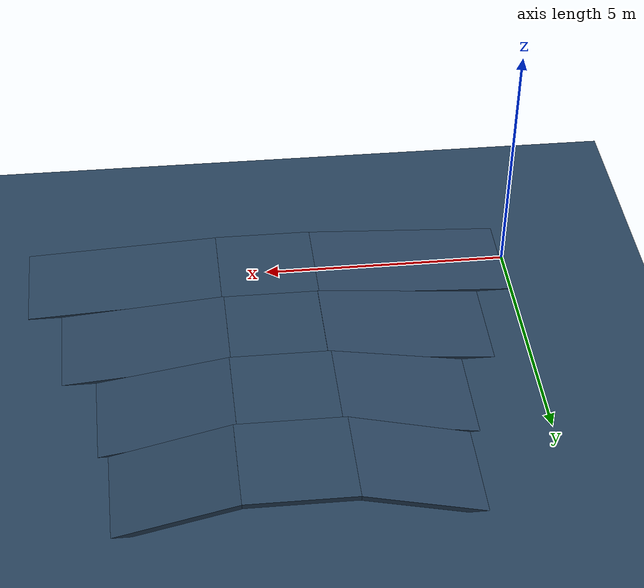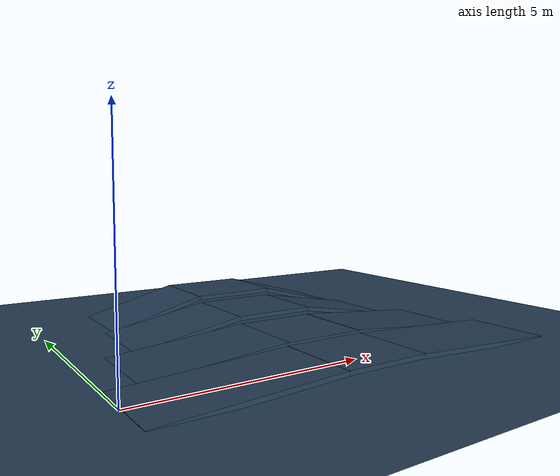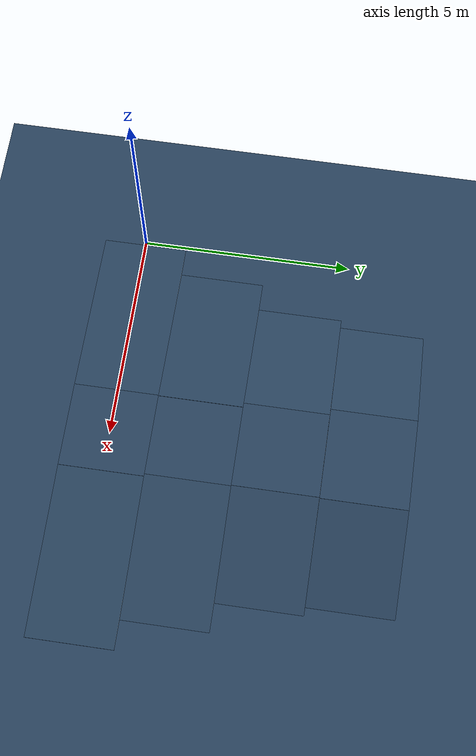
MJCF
<?xml version="1.0"?>

<mujoco>
  <visual>
    <headlight diffuse="0.6 0.6 0.6" ambient="0.3 0.3 0.3" specular="0 0 0"/>
    <rgba haze="0.15 0.25 0.35 1"/>
  </visual>

  <statistic center="0 0 .3" extent="1.2"/>

  <asset>
    <texture type="skybox" builtin="gradient" rgb1="0.3 0.5 0.7" rgb2="0 0 0" width="512" height="3072"/>
    <texture type="2d" name="groundplane" builtin="checker" mark="edge" rgb1="0.2 0.3 0.4" rgb2="0.1 0.2 0.3"
      markrgb="0.8 0.8 0.8" width="300" height="300"/>
    <material name="groundplane" texture="groundplane" texuniform="true" texrepeat="5 5" reflectance="0.2"/>
  </asset>

  <worldbody>
    <light pos="0 0 1.5" dir="0 0 -1" directional="true"/>
    <camera name="custom_camera" pos="4.377 2.686 1.066" xyaxes="-0.523 0.852 0.000 -0.126 -0.077 0.989" mode="fixed" resolution="1920 1080"/>
    <geom name="floor" size="0 0 0.05" type="plane" material="groundplane" friction="1.0 0.005 0.0001"
      solref="0.02 1"
      solimp="0.9 0.95 0.001 0.5 2"
      margin="0.0"
      group="2"
      contype="1"
      conaffinity="1"
      />

      <body name="double_ramp_3deg" pos="5 0 0">

        <!-- LEFT ramp — slopes UP (rises toward +X) -->
        <body name="ramp_up0" pos="-2.95 0 0">
          <!-- size = half-extents: half_x, half_y, half_z -->
          <!-- total length = 4.0 (x), width = 2.0 (y), thickness = 0.1 (z) -->
          <!-- quat rotates +10° about Y (rises along +X) -->
          <geom name="ramp_box_up0" type="box" size="2.0 1.0 0.05"
                pos="0 0 0.053"
                quat="-0.9996573 0 0.0261769 0"
                material="groundplane" friction="1.0 0.005 0.0001"
                solref="0.02 1" solimp="0.9 0.95 0.001 0.5 2"
                group="2" contype="1" conaffinity="1"/>
        </body>

        <!-- FLAT platform between ramps -->
        <body name="platform0" pos="0 0 0">
          <!-- platform center Z chosen so platform top ≈ 0.40 m (center_z + half_z = top) -->
          <!-- here center_z = 0.35, half_z = 0.05 -> top ≈ 0.40 -->
          <geom name="platform_box0" type="box" size="1.0 1.0 0.05"
                pos="0 0 0.16"
                material="groundplane" friction="1.0 0.005 0.0001"
                solref="0.02 1" solimp="0.9 0.95 0.001 0.5 2"
                group="2" contype="1" conaffinity="1"/>
        </body>

        <!-- RIGHT ramp — slopes DOWN (descends back to level) -->
        <body name="ramp_down0" pos="2.95 0 0">
          <!-- quat rotates -10° about Y (descends toward +X) -->
          <geom name="ramp_box_down0" type="box" size="2.0 1.0 0.05"
                pos="0 0 0.053"
                quat="-0.9996573 0 -0.0261769 0"
                material="groundplane" friction="1.0 0.005 0.0001"
                solref="0.02 1" solimp="0.9 0.95 0.001 0.5 2"
                group="2" contype="1" conaffinity="1"/>
        </body>

      </body>

      <body name="double_ramp_5deg" pos="5 2.0 0">

        <!-- LEFT ramp — slopes UP (rises toward +X) -->
        <body name="ramp_up1" pos="-2.95 0 0">
          <!-- size = half-extents: half_x, half_y, half_z -->
          <!-- total length = 4.0 (x), width = 2.0 (y), thickness = 0.1 (z) -->
          <!-- quat rotates +10° about Y (rises along +X) -->
          <geom name="ramp_box_up1" type="box" size="2.0 1.0 0.05"
                pos="0 0 0.053"
                quat="-0.9990482 0 0.0436194 0"
                material="groundplane" friction="1.0 0.005 0.0001"
                solref="0.02 1" solimp="0.9 0.95 0.001 0.5 2"
                group="2" contype="1" conaffinity="1"/>
        </body>

        <!-- FLAT platform between ramps -->
        <body name="platform1" pos="0 0 0">
          <!-- platform center Z chosen so platform top ≈ 0.40 m (center_z + half_z = top) -->
          <!-- here center_z = 0.35, half_z = 0.05 -> top ≈ 0.40 -->
          <geom name="platform_box1" type="box" size="1.0 1.0 0.05"
                pos="0 0 0.22"
                material="groundplane" friction="1.0 0.005 0.0001"
                solref="0.02 1" solimp="0.9 0.95 0.001 0.5 2"
                group="2" contype="1" conaffinity="1"/>
        </body>

        <!-- RIGHT ramp — slopes DOWN (descends back to level) -->
        <body name="ramp_down1" pos="2.95 0 0">
          <!-- quat rotates -10° about Y (descends toward +X) -->
          <geom name="ramp_box_down1" type="box" size="2.0 1.0 0.05"
                pos="0 0 0.053"
                quat="-0.9990482 0 -0.0436194 0"
                material="groundplane" friction="1.0 0.005 0.0001"
                solref="0.02 1" solimp="0.9 0.95 0.001 0.5 2"
                group="2" contype="1" conaffinity="1"/>
        </body>

      </body>

      <body name="double_ramp_10deg" pos="5 4.0 0">

        <!-- LEFT ramp — slopes UP (rises toward +X) -->
        <body name="ramp_up2" pos="-2.95 0 0">
          <!-- size = half-extents: half_x, half_y, half_z -->
          <!-- total length = 4.0 (x), width = 2.0 (y), thickness = 0.1 (z) -->
          <!-- quat rotates +10° about Y (rises along +X) -->
          <geom name="ramp_box_up2" type="box" size="2.0 1.0 0.05"
                pos="0 0 0.053"
                quat="-0.9961947 0 0.0871557 0"
                material="groundplane" friction="1.0 0.005 0.0001"
                solref="0.02 1" solimp="0.9 0.95 0.001 0.5 2"
                group="2" contype="1" conaffinity="1"/>
        </body>

        <!-- FLAT platform between ramps -->
        <body name="platform2" pos="0 0 0">
          <!-- platform center Z chosen so platform top ≈ 0.40 m (center_z + half_z = top) -->
          <!-- here center_z = 0.35, half_z = 0.05 -> top ≈ 0.40 -->
          <geom name="platform_box2" type="box" size="1.0 1.0 0.05"
                pos="0 0 0.4"
                material="groundplane" friction="1.0 0.005 0.0001"
                solref="0.02 1" solimp="0.9 0.95 0.001 0.5 2"
                group="2" contype="1" conaffinity="1"/>
        </body>

        <!-- RIGHT ramp — slopes DOWN (descends back to level) -->
        <body name="ramp_down2" pos="2.95 0 0">
          <!-- quat rotates -10° about Y (descends toward +X) -->
          <geom name="ramp_box_down2" type="box" size="2.0 1.0 0.05"
                pos="0 0 0.053"
                quat="-0.9961947 0 -0.0871557 0"
                material="groundplane" friction="1.0 0.005 0.0001"
                solref="0.02 1" solimp="0.9 0.95 0.001 0.5 2"
                group="2" contype="1" conaffinity="1"/>
        </body>

      </body>

      <body name="double_ramp_15deg" pos="5 6.0 0">

        <!-- LEFT ramp — slopes UP (rises toward +X) -->
        <body name="ramp_up3" pos="-2.98 0 0">
          <!-- size = half-extents: half_x, half_y, half_z -->
          <!-- total length = 4.0 (x), width = 2.0 (y), thickness = 0.1 (z) -->
          <!-- quat rotates +10° about Y (rises along +X) -->
          <geom name="ramp_box_up3" type="box" size="2.0 1.0 0.05"
                pos="0 0 0.053"
                quat="-0.9914449 0 0.1305262 0"
                material="groundplane" friction="1.0 0.005 0.0001"
                solref="0.02 1" solimp="0.9 0.95 0.001 0.5 2"
                group="2" contype="1" conaffinity="1"/>
        </body>

        <!-- FLAT platform between ramps -->
        <body name="platform3" pos="0 0 0">
          <!-- platform center Z chosen so platform top ≈ 0.40 m (center_z + half_z = top) -->
          <!-- here center_z = 0.35, half_z = 0.05 -> top ≈ 0.40 -->
          <geom name="platform_box3" type="box" size="1.07 1.0 0.05"
                pos="0 0 0.57"
                material="groundplane" friction="1.0 0.005 0.0001"
                solref="0.02 1" solimp="0.9 0.95 0.001 0.5 2"
                group="2" contype="1" conaffinity="1"/>
        </body>

        <!-- RIGHT ramp — slopes DOWN (descends back to level) -->
        <body name="ramp_down3" pos="2.98 0 0">
          <!-- quat rotates -10° about Y (descends toward +X) -->
          <geom name="ramp_box_down3" type="box" size="2.0 1.0 0.05"
                pos="0 0 0.053"
                quat="-0.9914449 0 -0.1305262 0"
                material="groundplane" friction="1.0 0.005 0.0001"
                solref="0.02 1" solimp="0.9 0.95 0.001 0.5 2"
                group="2" contype="1" conaffinity="1"/>
        </body>

      </body>

  </worldbody>
</mujoco>
